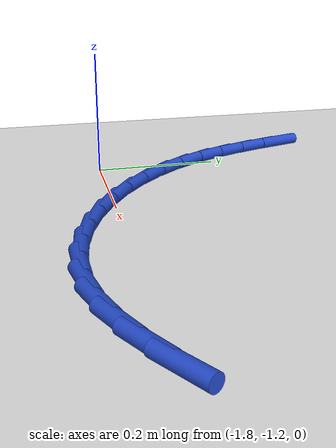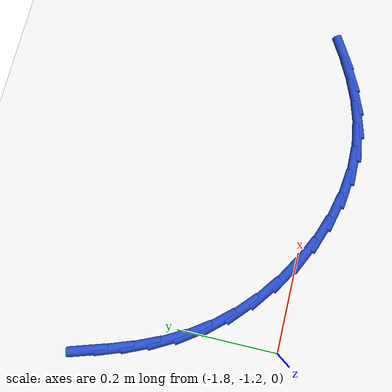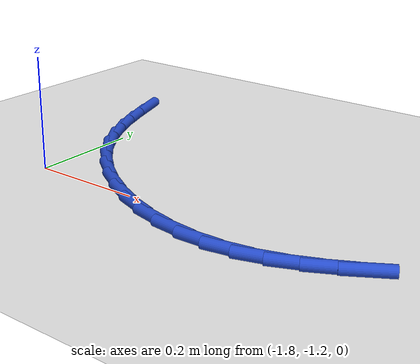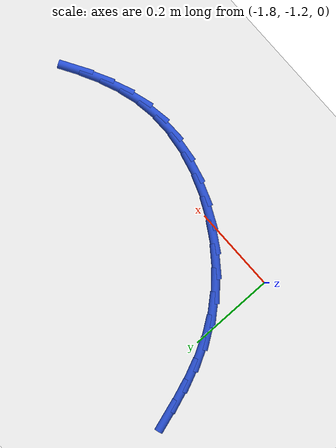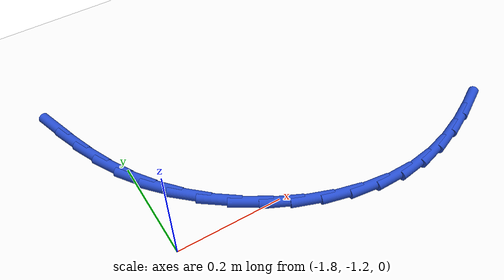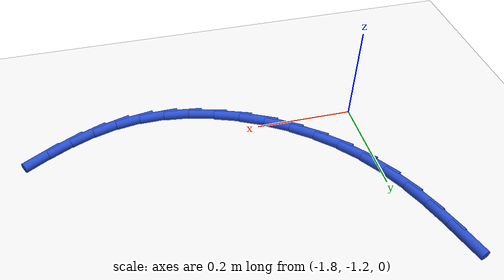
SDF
<sdf version="1.6">
 <world name="default">
  <model name="ground_plane">
   <static>1</static>
   <link name="link">
    <collision name="collision">
     <geometry><plane><normal>0 0 1</normal><size>100 100</size></plane></geometry>
     <surface><friction><ode><mu>100</mu><mu2>50</mu2></ode></friction></surface>
    </collision>
    <visual name="visual">
     <cast_shadows>0</cast_shadows>
     <geometry><plane><normal>0 0 1</normal><size>100 100</size></plane></geometry>
     <material>
      <script><uri>file://media/materials/scripts/gazebo.material</uri><name>Gazebo/WhiteGlow</name></script>
     </material>
    </visual>
   </link>
  </model>
  <model name="line">
   <link name="link_97">
    <pose>-1.8762917428130805 -0.8423010214406778 0.01 0 1.57 -1.2635506510215266</pose>
    <collision name="collision">
     <geometry><cylinder><radius>0.01</radius><length>0.08</length></cylinder></geometry>
    </collision>
    <visual name="visual">
     <material>
      <script><name>Gazebo/Blue</name><uri>file://media/materials/scripts/gazebo.material</uri></script>
     </material>
     <geometry><cylinder><radius>0.01</radius><length>0.08</length></cylinder></geometry>
    </visual>
   </link>
   <link name="link_98">
    <pose>-1.8606985560151708 -0.8914454258282458 0.01 0 1.57 -1.2194413469747363</pose>
    <collision name="collision">
     <geometry><cylinder><radius>0.01</radius><length>0.08</length></cylinder></geometry>
    </collision>
    <visual name="visual">
     <material>
      <script><name>Gazebo/Blue</name><uri>file://media/materials/scripts/gazebo.material</uri></script>
     </material>
     <geometry><cylinder><radius>0.01</radius><length>0.08</length></cylinder></geometry>
    </visual>
   </link>
   <link name="link_99">
    <pose>-1.8429790939390442 -0.9397846635380817 0.01 0 1.57 -1.154234833714511</pose>
    <collision name="collision">
     <geometry><cylinder><radius>0.01</radius><length>0.08</length></cylinder></geometry>
    </collision>
    <visual name="visual">
     <material>
      <script><name>Gazebo/Blue</name><uri>file://media/materials/scripts/gazebo.material</uri></script>
     </material>
     <geometry><cylinder><radius>0.01</radius><length>0.08</length></cylinder></geometry>
    </visual>
   </link>
   <link name="link_100">
    <pose>-1.8221857551988838 -0.9867800796295559 0.01 0 1.57 -1.0679071662905437</pose>
    <collision name="collision">
     <geometry><cylinder><radius>0.01</radius><length>0.08</length></cylinder></geometry>
    </collision>
    <visual name="visual">
     <material>
      <script><name>Gazebo/Blue</name><uri>file://media/materials/scripts/gazebo.material</uri></script>
     </material>
     <geometry><cylinder><radius>0.01</radius><length>0.08</length></cylinder></geometry>
    </visual>
   </link>
   <link name="link_101">
    <pose>-1.7973709384088734 -1.0318930191620386 0.01 0 1.57 -0.9617722979563486</pose>
    <collision name="collision">
     <geometry><cylinder><radius>0.01</radius><length>0.08</length></cylinder></geometry>
    </collision>
    <visual name="visual">
     <material>
      <script><name>Gazebo/Blue</name><uri>file://media/materials/scripts/gazebo.material</uri></script>
     </material>
     <geometry><cylinder><radius>0.01</radius><length>0.08</length></cylinder></geometry>
    </visual>
   </link>
   <link name="link_102">
    <pose>-1.7675946087914445 -1.0745851092813268 0.01 0 1.57 -0.8478183198937854</pose>
    <collision name="collision">
     <geometry><cylinder><radius>0.01</radius><length>0.08</length></cylinder></geometry>
    </collision>
    <visual name="visual">
     <material>
      <script><name>Gazebo/Blue</name><uri>file://media/materials/scripts/gazebo.material</uri></script>
     </material>
     <geometry><cylinder><radius>0.01</radius><length>0.08</length></cylinder></geometry>
    </visual>
   </link>
   <link name="link_103">
    <pose>-1.7325165601273373 -1.1143403390010769 0.01 0 1.57 -0.7413102429178423</pose>
    <collision name="collision">
     <geometry><cylinder><radius>0.01</radius><length>0.08</length></cylinder></geometry>
    </collision>
    <visual name="visual">
     <material>
      <script><name>Gazebo/Blue</name><uri>file://media/materials/scripts/gazebo.material</uri></script>
     </material>
     <geometry><cylinder><radius>0.01</radius><length>0.08</length></cylinder></geometry>
    </visual>
   </link>
   <link name="link_104">
    <pose>-1.6928215665376358 -1.1506809090449612 0.01 0 1.57 -0.6406531763180362</pose>
    <collision name="collision">
     <geometry><cylinder><radius>0.01</radius><length>0.08</length></cylinder></geometry>
    </collision>
    <visual name="visual">
     <material>
      <script><name>Gazebo/Blue</name><uri>file://media/materials/scripts/gazebo.material</uri></script>
     </material>
     <geometry><cylinder><radius>0.01</radius><length>0.08</length></cylinder></geometry>
    </visual>
   </link>
   <link name="link_105">
    <pose>-1.6492947281145003 -1.1831327603322104 0.01 0 1.57 -0.5427043826829959</pose>
    <collision name="collision">
     <geometry><cylinder><radius>0.01</radius><length>0.08</length></cylinder></geometry>
    </collision>
    <visual name="visual">
     <material>
      <script><name>Gazebo/Blue</name><uri>file://media/materials/scripts/gazebo.material</uri></script>
     </material>
     <geometry><cylinder><radius>0.01</radius><length>0.08</length></cylinder></geometry>
    </visual>
   </link>
   <link name="link_106">
    <pose>-1.6027211449500947 -1.2112218337820533 0.01 0 1.57 -0.4443752446883119</pose>
    <collision name="collision">
     <geometry><cylinder><radius>0.01</radius><length>0.08</length></cylinder></geometry>
    </collision>
    <visual name="visual">
     <material>
      <script><name>Gazebo/Blue</name><uri>file://media/materials/scripts/gazebo.material</uri></script>
     </material>
     <geometry><cylinder><radius>0.01</radius><length>0.08</length></cylinder></geometry>
    </visual>
   </link>
   <link name="link_107">
    <pose>-1.5538859171365798 -1.2344740703137207 0.01 0 1.57 -0.3425452752657206</pose>
    <collision name="collision">
     <geometry><cylinder><radius>0.01</radius><length>0.08</length></cylinder></geometry>
    </collision>
    <visual name="visual">
     <material>
      <script><name>Gazebo/Blue</name><uri>file://media/materials/scripts/gazebo.material</uri></script>
     </material>
     <geometry><cylinder><radius>0.01</radius><length>0.08</length></cylinder></geometry>
    </visual>
   </link>
   <link name="link_108">
    <pose>-1.5035741447661182 -1.2524154108464405 0.01 0 1.57 -0.23397997059788855</pose>
    <collision name="collision">
     <geometry><cylinder><radius>0.01</radius><length>0.08</length></cylinder></geometry>
    </collision>
    <visual name="visual">
     <material>
      <script><name>Gazebo/Blue</name><uri>file://media/materials/scripts/gazebo.material</uri></script>
     </material>
     <geometry><cylinder><radius>0.01</radius><length>0.08</length></cylinder></geometry>
    </visual>
   </link>
   <link name="link_109">
    <pose>-1.4525709279308734 -1.2645717962994427 0.01 0 1.57 -0.11532613322053537</pose>
    <collision name="collision">
     <geometry><cylinder><radius>0.01</radius><length>0.08</length></cylinder></geometry>
    </collision>
    <visual name="visual">
     <material>
      <script><name>Gazebo/Blue</name><uri>file://media/materials/scripts/gazebo.material</uri></script>
     </material>
     <geometry><cylinder><radius>0.01</radius><length>0.08</length></cylinder></geometry>
    </visual>
   </link>
   <link name="link_110">
    <pose>-1.4016613667230062 -1.2704691675919577 0.01 0 1.57 0.016702194359765176</pose>
    <collision name="collision">
     <geometry><cylinder><radius>0.01</radius><length>0.08</length></cylinder></geometry>
    </collision>
    <visual name="visual">
     <material>
      <script><name>Gazebo/Blue</name><uri>file://media/materials/scripts/gazebo.material</uri></script>
     </material>
     <geometry><cylinder><radius>0.01</radius><length>0.08</length></cylinder></geometry>
    </visual>
   </link>
   <link name="link_111">
    <pose>-1.3516305612346793 -1.269633465643214 0.01 0 1.57 0.1608272606202004</pose>
    <collision name="collision">
     <geometry><cylinder><radius>0.01</radius><length>0.08</length></cylinder></geometry>
    </collision>
    <visual name="visual">
     <material>
      <script><name>Gazebo/Blue</name><uri>file://media/materials/scripts/gazebo.material</uri></script>
     </material>
     <geometry><cylinder><radius>0.01</radius><length>0.08</length></cylinder></geometry>
    </visual>
   </link>
   <link name="link_112">
    <pose>-1.3031412510930915 -1.2617671234356882 0.01 0 1.57 0.29276295133437574</pose>
    <collision name="collision">
     <geometry><cylinder><radius>0.01</radius><length>0.08</length></cylinder></geometry>
    </collision>
    <visual name="visual">
     <material>
      <script><name>Gazebo/Blue</name><uri>file://media/materials/scripts/gazebo.material</uri></script>
     </material>
     <geometry><cylinder><radius>0.01</radius><length>0.08</length></cylinder></geometry>
    </visual>
   </link>
   <link name="link_113">
    <pose>-1.256143312577792 -1.2476008041328719 0.01 0 1.57 0.3998957443994117</pose>
    <collision name="collision">
     <geometry><cylinder><radius>0.01</radius><length>0.08</length></cylinder></geometry>
    </collision>
    <visual name="visual">
     <material>
      <script><name>Gazebo/Blue</name><uri>file://media/materials/scripts/gazebo.material</uri></script>
     </material>
     <geometry><cylinder><radius>0.01</radius><length>0.08</length></cylinder></geometry>
    </visual>
   </link>
   <link name="link_114">
    <pose>-1.2103291662175528 -1.2282365236604667 0.01 0 1.57 0.48112620298321734</pose>
    <collision name="collision">
     <geometry><cylinder><radius>0.01</radius><length>0.08</length></cylinder></geometry>
    </collision>
    <visual name="visual">
     <material>
      <script><name>Gazebo/Blue</name><uri>file://media/materials/scripts/gazebo.material</uri></script>
     </material>
     <geometry><cylinder><radius>0.01</radius><length>0.08</length></cylinder></geometry>
    </visual>
   </link>
   <link name="link_115">
    <pose>-1.1653908832186506 -1.2047768018050191 0.01 0 1.57 0.5376047639839249</pose>
    <collision name="collision">
     <geometry><cylinder><radius>0.01</radius><length>0.08</length></cylinder></geometry>
    </collision>
    <visual name="visual">
     <material>
      <script><name>Gazebo/Blue</name><uri>file://media/materials/scripts/gazebo.material</uri></script>
     </material>
     <geometry><cylinder><radius>0.01</radius><length>0.08</length></cylinder></geometry>
    </visual>
   </link>
  </model>
 </world>
</sdf>
